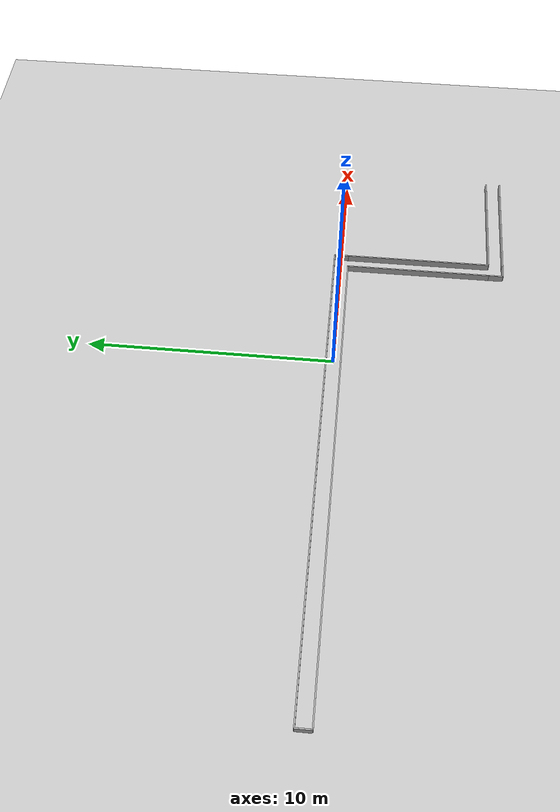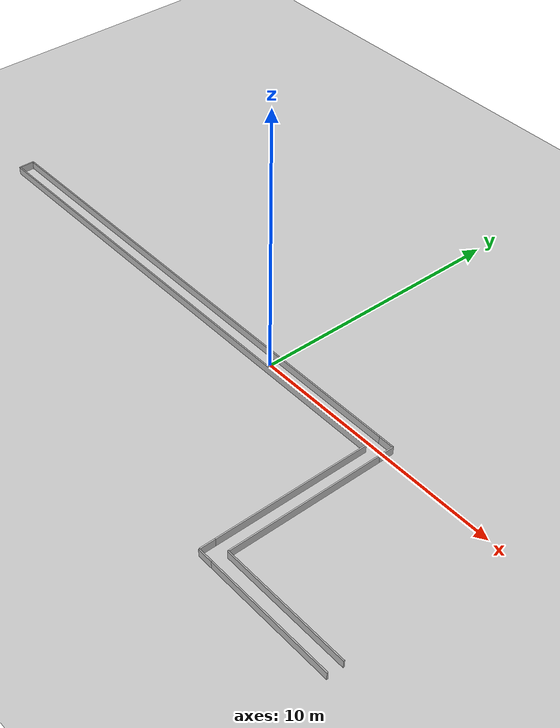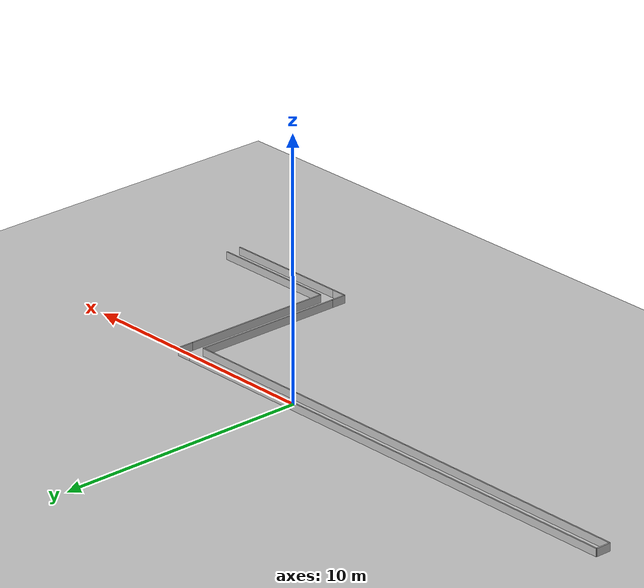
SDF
<?xml version="1.0"?>
<sdf version="1.4">
  <world name="default">

    <physics type="ode">
      <real_time_update_rate>0</real_time_update_rate>
    </physics>

    <include>
      <uri>model://ground_plane</uri>
    </include>
    <include>
      <uri>model://sun</uri>
    </include>

    <model name="maze">
      <pose>0 0 0  0 0 0</pose>
      <static>true</static>

      <link name="leftwall_1">
        <pose> -5 0.3 0.15 0 0 0 </pose>
        <visual name="visual">
          <geometry>
            <box>
                <size>20 0.05 0.3</size>
            </box>
          </geometry>
        </visual>
        <collision name="collision">
          <geometry>
            <box>
                <size>20 0.05 1</size>
            </box>
          </geometry>
        </collision>
      </link>

      <link name="rightwall_1">
        <pose> -5 -0.3 0.15 0 0 0 </pose>
        <visual name="visual">
          <geometry>
            <box>
                <size>20 0.05 0.3</size>
            </box>
          </geometry>
        </visual>
        <collision name="collision">
          <geometry>
            <box>
                <size>20 0.05 1</size>
            </box>
          </geometry>
        </collision>
      </link>

      <link name="topwall_1">
        <pose> 5.6 -3.3 0.15 0 0 0 </pose>
        <visual name="visual">
          <geometry>
            <box>
                <size>0.05 6 0.3</size>
            </box>
          </geometry>
        </visual>
        <collision name="collision">
          <geometry>
            <box>
                <size>0.05 6 1</size>
            </box>
          </geometry>
        </collision>
      </link>

      <link name="bottomwall_1">
        <pose> 5 -3.3 0.15 0 0 0 </pose>
        <visual name="visual">
          <geometry>
            <box>
                <size>0.05 6 0.3</size>
            </box>
          </geometry>
        </visual>
        <collision name="collision">
          <geometry>
            <box>
                <size>0.05 6 1</size>
            </box>
          </geometry>
        </collision>
      </link>

      <link name="leftwall_2">
        <pose> 8.1 -6.3 0.15 0 0 0 </pose>
        <visual name="visual">
          <geometry>
            <box>
                <size>5 0.05 0.3</size>
            </box>
          </geometry>
        </visual>
        <collision name="collision">
          <geometry>
            <box>
                <size>5 0.05 1</size>
            </box>
          </geometry>
        </collision>
      </link>

      <link name="rightwall_2">
        <pose> 8.1 -6.9 0.15 0 0 0 </pose>
        <visual name="visual">
          <geometry>
            <box>
                <size>5 0.05 0.3</size>
            </box>
          </geometry>
        </visual>
        <collision name="collision">
          <geometry>
            <box>
                <size>5 0.05 1</size>
            </box>
          </geometry>
        </collision>
      </link>

      <link name="bottomend">
        <pose> -15 0 0.15 0 0 0 </pose>
        <visual name="visual">
          <geometry>
            <box>
                <size>0.05 0.6 0.3</size>
            </box>
          </geometry>
        </visual>
        <collision name="collision">
          <geometry>
            <box>
                <size>0.05 0.6 1</size>
            </box>
          </geometry>
        </collision>
      </link>

      <link name="corner1">
        <pose> 5.3 0.3 0.15 0 0 0 </pose>
        <visual name="visual">
          <geometry>
            <box>
                <size>0.6 0.05 0.3</size>
            </box>
          </geometry>
        </visual>
        <collision name="collision">
          <geometry>
            <box>
                <size>0.6 0.05 1</size>
            </box>
          </geometry>
        </collision>
      </link>

      <link name="corner2">
        <pose> 5.6 0 0.15 0 0 0 </pose>
        <visual name="visual">
          <geometry>
            <box>
                <size>0.05 0.6 0.3</size>
            </box>
          </geometry>
        </visual>
        <collision name="collision">
          <geometry>
            <box>
                <size>0.05 0.6 1</size>
            </box>
          </geometry>
        </collision>
      </link>

      <link name="corner3">
        <pose> 5.3 -6.9 0.15 0 0 0 </pose>
        <visual name="visual">
          <geometry>
            <box>
                <size>0.6 0.05 0.3</size>
            </box>
          </geometry>
        </visual>
        <collision name="collision">
          <geometry>
            <box>
                <size>0.6 0.05 1</size>
            </box>
          </geometry>
        </collision>
      </link>

      <link name="corner4">
        <pose> 5 -6.6 0.15 0 0 0 </pose>
        <visual name="visual">
          <geometry>
            <box>
                <size>0.05 0.6 0.3</size>
            </box>
          </geometry>
        </visual>
        <collision name="collision">
          <geometry>
            <box>
                <size>0.05 0.6 1</size>
            </box>
          </geometry>
        </collision>
      </link>

    </model>

  </world>
</sdf>
